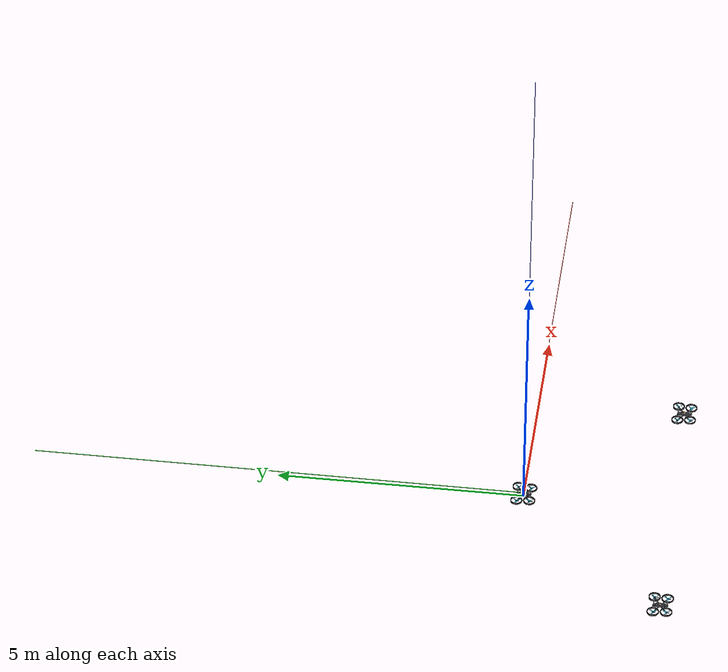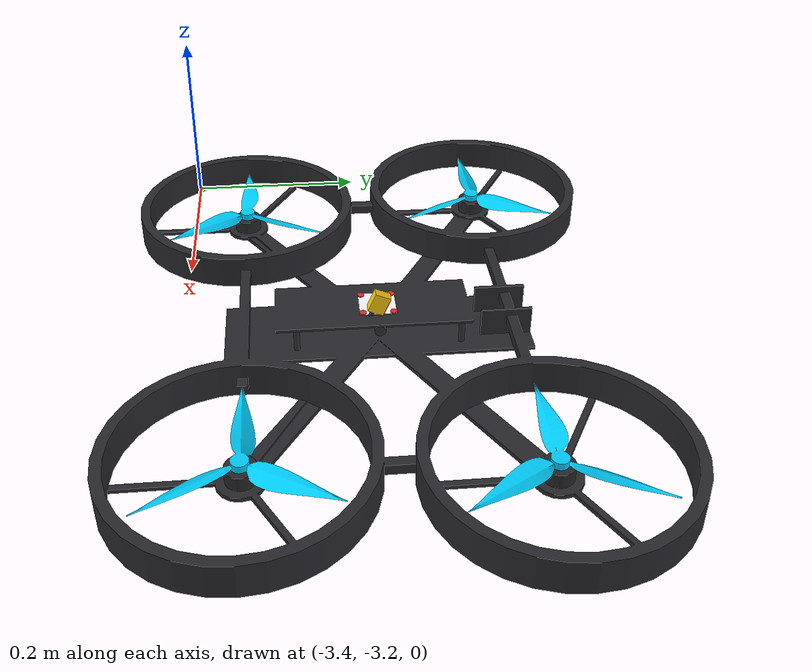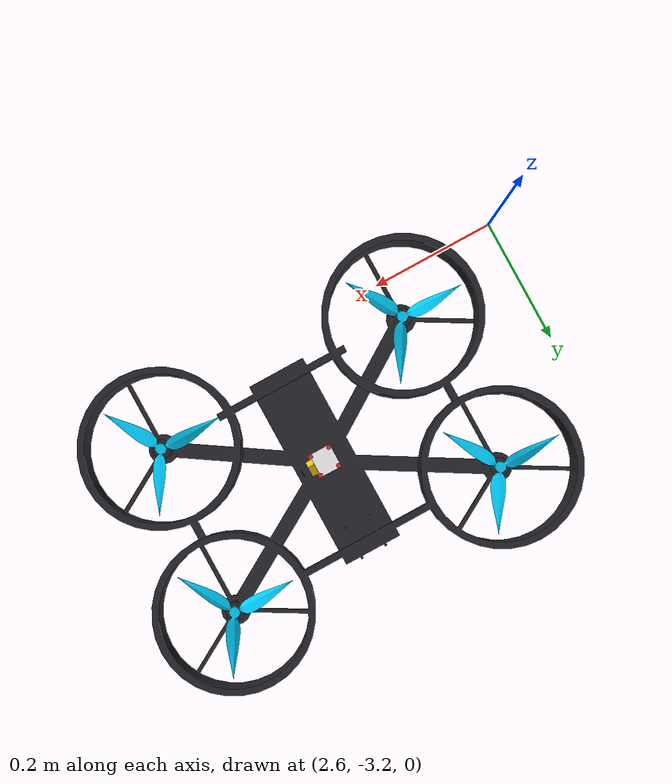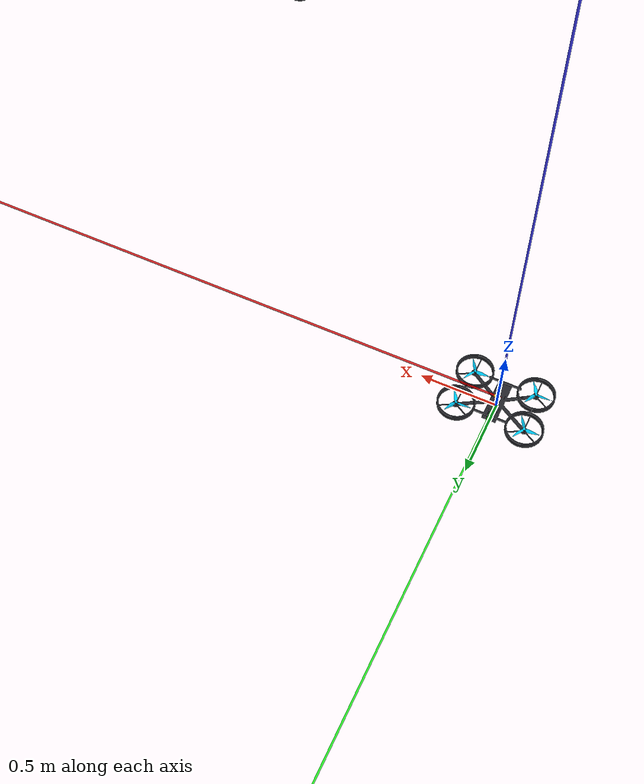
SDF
<sdf version="1.9">
 <world name="cinewhoop_3drones">
  <physics name="1ms" type="ignore">
   <max_step_size>0.001</max_step_size>
   <real_time_factor>1.0</real_time_factor>
  </physics>
  <plugin filename="gz-sim-physics-system" name="gz::sim::systems::Physics"/>
  <plugin filename="gz-sim-sensors-system" name="gz::sim::systems::Sensors">
   <render_engine>ogre2</render_engine>
  </plugin>
  <plugin filename="gz-sim-user-commands-system" name="gz::sim::systems::UserCommands"/>
  <plugin filename="gz-sim-scene-broadcaster-system" name="gz::sim::systems::SceneBroadcaster"/>
  <plugin filename="gz-sim-imu-system" name="gz::sim::systems::Imu"/>
  <plugin filename="gz-sim-navsat-system" name="gz::sim::systems::NavSat"/>
  <scene><ambient>1.0 1.0 1.0</ambient><background>0.8 0.8 0.8</background></scene>
  <spherical_coordinates>
   <latitude_deg>-35.363262</latitude_deg>
   <longitude_deg>149.165237</longitude_deg>
   <elevation>584</elevation>
   <heading_deg>0</heading_deg>
   <surface_model>EARTH_WGS84</surface_model>
  </spherical_coordinates>
  <light type="directional" name="sun">
   <pose>0 0 10 0 0 0</pose>
   <diffuse>0.8 0.8 0.8 1</diffuse>
   <specular>0.8 0.8 0.8 1</specular>
   <attenuation>
    <range>1000</range>
    <constant>0.9</constant>
    <linear>0.01</linear>
    <quadratic>0.001</quadratic>
   </attenuation>
   <direction>-0.5 0.1 -0.9</direction>
  </light>
  <model name="axes">
   <static>1</static>
   <link name="link">
    <visual name="r">
     <cast_shadows>0</cast_shadows>
     <pose>5 0 0.1 0 0 0</pose>
     <geometry><box><size>10 0.01 0.01</size></box></geometry>
     <material>
      <ambient>1 0 0 0.8</ambient>
      <diffuse>1 0 0 0.8</diffuse>
      <emissive>1 0 0 0.8</emissive>
      <specular>0.5 0.5 0.5 0.8</specular>
     </material>
    </visual>
    <visual name="g">
     <cast_shadows>0</cast_shadows>
     <pose>0 5 0.1 0 0 0</pose>
     <geometry><box><size>0.01 10 0.01</size></box></geometry>
     <material>
      <ambient>0 1 0 0.8</ambient>
      <diffuse>0 1 0 0.8</diffuse>
      <emissive>0 1 0 0.8</emissive>
      <specular>0.5 0.5 0.5 0.8</specular>
     </material>
    </visual>
    <visual name="b">
     <cast_shadows>0</cast_shadows>
     <pose>0 0 5.1 0 0 0</pose>
     <geometry><box><size>0.01 0.01 10</size></box></geometry>
     <material>
      <ambient>0 0 1 0.8</ambient>
      <diffuse>0 0 1 0.8</diffuse>
      <emissive>0 0 1 0.8</emissive>
      <specular>0.5 0.5 0.5 0.8</specular>
     </material>
    </visual>
    <sensor name="navsat_sensor" type="navsat"><always_on>1</always_on><update_rate>1</update_rate></sensor>
   </link>
  </model>
  <include>
   <name>cinewhoop_1</name>
   <uri>model://cinewhoop_1</uri>
   <pose degrees="true">0 0 0.05 0 0 90</pose>
  </include>
  <include>
   <name>cinewhoop_2</name>
   <uri>model://cinewhoop_2</uri>
   <pose degrees="true">-3.0 -3.0 0.05 0 0 90</pose>
  </include>
  <include>
   <name>cinewhoop_3</name>
   <uri>model://cinewhoop_3</uri>
   <pose degrees="true">3.0 -3.0 0.05 0 0 90</pose>
  </include>
 </world>
</sdf>

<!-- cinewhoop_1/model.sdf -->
<sdf version="1.9">
  <model name="cinewhoop_1">
    <include>
      <uri>model://iris_with_standoffs</uri>
    </include>

    <!--
      visual markers for debugging
      - blade root    - teal
      - blade tip     - orange
      - blade cp      - yellow
      - blade forward - red
      - blade upward  - blue
    -->

    <!-- plugins -->
    <plugin filename="gz-sim-joint-state-publisher-system"
      name="gz::sim::systems::JointStatePublisher">
    </plugin>
    <plugin filename="gz-sim-lift-drag-system"
        name="gz::sim::systems::LiftDrag">
      <a0>0.3</a0>
      <alpha_stall>1.4</alpha_stall>
      <cla>4.2500</cla>
      <cda>0.10</cda>
      <cma>0.0</cma>
      <cla_stall>-0.025</cla_stall>
      <cda_stall>0.0</cda_stall>
      <cma_stall>0.0</cma_stall>
      <area>0.002</area>
      <air_density>1.2041</air_density>
      <cp>0.084 0 0</cp>
      <forward>0 1 0</forward>
      <upward>0 0 1</upward>
      <link_name>iris_with_standoffs::rotor_0</link_name>
    </plugin>
    <plugin filename="gz-sim-lift-drag-system"
        name="gz::sim::systems::LiftDrag">
      <a0>0.3</a0>
      <alpha_stall>1.4</alpha_stall>
      <cla>4.2500</cla>
      <cda>0.10</cda>
      <cma>0.0</cma>
      <cla_stall>-0.025</cla_stall>
      <cda_stall>0.0</cda_stall>
      <cma_stall>0.0</cma_stall>
      <area>0.002</area>
      <air_density>1.2041</air_density>
      <cp>-0.084 0 0</cp>
      <forward>0 -1 0</forward>
      <upward>0 0 1</upward>
      <link_name>iris_with_standoffs::rotor_0</link_name>
    </plugin>

    <plugin filename="gz-sim-lift-drag-system"
        name="gz::sim::systems::LiftDrag">
      <a0>0.3</a0>
      <alpha_stall>1.4</alpha_stall>
      <cla>4.2500</cla>
      <cda>0.10</cda>
      <cma>0.0</cma>
      <cla_stall>-0.025</cla_stall>
      <cda_stall>0.0</cda_stall>
      <cma_stall>0.0</cma_stall>
      <area>0.002</area>
      <air_density>1.2041</air_density>
      <cp>0.084 0 0</cp>
      <forward>0 1 0</forward>
      <upward>0 0 1</upward>
      <link_name>iris_with_standoffs::rotor_1</link_name>
    </plugin>
    <plugin filename="gz-sim-lift-drag-system"
        name="gz::sim::systems::LiftDrag">
      <a0>0.3</a0>
      <alpha_stall>1.4</alpha_stall>
      <cla>4.2500</cla>
      <cda>0.10</cda>
      <cma>0.0</cma>
      <cla_stall>-0.025</cla_stall>
      <cda_stall>0.0</cda_stall>
      <cma_stall>0.0</cma_stall>
      <area>0.002</area>
      <air_density>1.2041</air_density>
      <cp>-0.084 0 0</cp>
      <forward>0 -1 0</forward>
      <upward>0 0 1</upward>
      <link_name>iris_with_standoffs::rotor_1</link_name>
    </plugin>

    <plugin filename="gz-sim-lift-drag-system"
        name="gz::sim::systems::LiftDrag">
      <a0>0.3</a0>
      <alpha_stall>1.4</alpha_stall>
      <cla>4.2500</cla>
      <cda>0.10</cda>
      <cma>0.0</cma>
      <cla_stall>-0.025</cla_stall>
      <cda_stall>0.0</cda_stall>
      <cma_stall>0.0</cma_stall>
      <area>0.002</area>
      <air_density>1.2041</air_density>
      <cp>0.084 0 0</cp>
      <forward>0 -1 0</forward>
      <upward>0 0 1</upward>
      <link_name>iris_with_standoffs::rotor_2</link_name>
    </plugin>
    <plugin filename="gz-sim-lift-drag-system"
        name="gz::sim::systems::LiftDrag">
      <a0>0.3</a0>
      <alpha_stall>1.4</alpha_stall>
      <cla>4.2500</cla>
      <cda>0.10</cda>
      <cma>0.0</cma>
      <cla_stall>-0.025</cla_stall>
      <cda_stall>0.0</cda_stall>
      <cma_stall>0.0</cma_stall>
      <area>0.002</area>
      <air_density>1.2041</air_density>
      <cp>-0.084 0 0</cp>
      <forward>0 1 0</forward>
      <upward>0 0 1</upward>
      <link_name>iris_with_standoffs::rotor_2</link_name>
    </plugin>

    <plugin filename="gz-sim-lift-drag-system"
        name="gz::sim::systems::LiftDrag">
      <a0>0.3</a0>
      <alpha_stall>1.4</alpha_stall>
      <cla>4.2500</cla>
      <cda>0.10</cda>
      <cma>0.0</cma>
      <cla_stall>-0.025</cla_stall>
      <cda_stall>0.0</cda_stall>
      <cma_stall>0.0</cma_stall>
      <area>0.002</area>
      <air_density>1.2041</air_density>
      <cp>0.084 0 0</cp>
      <forward>0 -1 0</forward>
      <upward>0 0 1</upward>
      <link_name>iris_with_standoffs::rotor_3</link_name>
    </plugin>
    <plugin filename="gz-sim-lift-drag-system"
        name="gz::sim::systems::LiftDrag">
      <a0>0.3</a0>
      <alpha_stall>1.4</alpha_stall>
      <cla>4.2500</cla>
      <cda>0.10</cda>
      <cma>0.0</cma>
      <cla_stall>-0.025</cla_stall>
      <cda_stall>0.0</cda_stall>
      <cma_stall>0.0</cma_stall>
      <area>0.002</area>
      <air_density>1.2041</air_density>
      <cp>-0.084 0 0</cp>
      <forward>0 1 0</forward>
      <upward>0 0 1</upward>
      <link_name>iris_with_standoffs::rotor_3</link_name>
    </plugin>

    <plugin filename="gz-sim-apply-joint-force-system"
      name="gz::sim::systems::ApplyJointForce">
      <joint_name>iris_with_standoffs::rotor_0_joint</joint_name>
    </plugin>
    <plugin filename="gz-sim-apply-joint-force-system"
      name="gz::sim::systems::ApplyJointForce">
      <joint_name>iris_with_standoffs::rotor_1_joint</joint_name>
    </plugin>
    <plugin filename="gz-sim-apply-joint-force-system"
      name="gz::sim::systems::ApplyJointForce">
      <joint_name>iris_with_standoffs::rotor_2_joint</joint_name>
    </plugin>
    <plugin filename="gz-sim-apply-joint-force-system"
      name="gz::sim::systems::ApplyJointForce">
      <joint_name>iris_with_standoffs::rotor_3_joint</joint_name>
    </plugin>

    <plugin name="ArduPilotPlugin"
      filename="ArduPilotPlugin">
      <!-- Port settings -->
      <fdm_addr>127.0.0.1</fdm_addr>
      <fdm_port_in>9002</fdm_port_in>
      <fdm_port_out>9003</fdm_port_out>
      <connectionTimeoutMaxCount>50</connectionTimeoutMaxCount>
      <lock_step>1</lock_step>
      <no_time_sync>1</no_time_sync>
      <have_32_channels>0</have_32_channels>

      <!-- Frame conventions
        Require by ArduPilot: change model and gazebo from XYZ to XY-Z coordinates
      -->
      <modelXYZToAirplaneXForwardZDown degrees="true">0 0 0 180 0 0</modelXYZToAirplaneXForwardZDown>
      <gazeboXYZToNED degrees="true">0 0 0 180 0 90</gazeboXYZToNED>

      <!-- Sensors -->
      <imuName>iris_with_standoffs::imu_link::imu_sensor</imuName>

      <!--
          incoming control command [0, 1]
          so offset it by 0 to get [0, 1]
          and divide max target by 1.
          offset = 0
          multiplier = 838 max rpm / 1 = 838
        -->
      <control channel="0">
        <jointName>iris_with_standoffs::rotor_0_joint</jointName>
        <useForce>1</useForce>
        <multiplier>838</multiplier>
        <offset>0</offset>
        <servo_min>1100</servo_min>
        <servo_max>1900</servo_max>
        <type>VELOCITY</type>
        <p_gain>0.20</p_gain>
        <i_gain>0</i_gain>
        <d_gain>0</d_gain>
        <i_max>0</i_max>
        <i_min>0</i_min>
        <cmd_max>2.5</cmd_max>
        <cmd_min>-2.5</cmd_min>
        <controlVelocitySlowdownSim>1</controlVelocitySlowdownSim>
      </control>

      <control channel="1">
        <jointName>iris_with_standoffs::rotor_1_joint</jointName>
        <useForce>1</useForce>
        <multiplier>838</multiplier>
        <offset>0</offset>
        <servo_min>1100</servo_min>
        <servo_max>1900</servo_max>
        <type>VELOCITY</type>
        <p_gain>0.20</p_gain>
        <i_gain>0</i_gain>
        <d_gain>0</d_gain>
        <i_max>0</i_max>
        <i_min>0</i_min>
        <cmd_max>2.5</cmd_max>
        <cmd_min>-2.5</cmd_min>
        <controlVelocitySlowdownSim>1</controlVelocitySlowdownSim>
      </control>

      <control channel="2">
        <jointName>iris_with_standoffs::rotor_2_joint</jointName>
        <useForce>1</useForce>
        <multiplier>-838</multiplier>
        <offset>0</offset>
        <servo_min>1100</servo_min>
        <servo_max>1900</servo_max>
        <type>VELOCITY</type>
        <p_gain>0.20</p_gain>
        <i_gain>0</i_gain>
        <d_gain>0</d_gain>
        <i_max>0</i_max>
        <i_min>0</i_min>
        <cmd_max>2.5</cmd_max>
        <cmd_min>-2.5</cmd_min>
        <controlVelocitySlowdownSim>1</controlVelocitySlowdownSim>
      </control>

      <control channel="3">
        <jointName>iris_with_standoffs::rotor_3_joint</jointName>
        <useForce>1</useForce>
        <multiplier>-838</multiplier>
        <offset>0</offset>
        <servo_min>1100</servo_min>
        <servo_max>1900</servo_max>
        <type>VELOCITY</type>
        <p_gain>0.20</p_gain>
        <i_gain>0</i_gain>
        <d_gain>0</d_gain>
        <i_max>0</i_max>
        <i_min>0</i_min>
        <cmd_max>2.5</cmd_max>
        <cmd_min>-2.5</cmd_min>
        <controlVelocitySlowdownSim>1</controlVelocitySlowdownSim>
      </control>

    </plugin>

  </model>
</sdf>

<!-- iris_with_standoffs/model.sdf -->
<sdf version='1.9'>
  <model name='iris_with_standoffs'>
    <pose>0 0 0 0 0 0</pose>
    <link name='base_link'>
      <velocity_decay>
        <linear>0.0</linear>
        <angular>0.0</angular>
      </velocity_decay>
      <inertial>
        <pose>0 0 0 0 0 0</pose>
        <mass>1.5</mass>
        <inertia>
          <ixx>0.008</ixx>
          <ixy>0</ixy>
          <ixz>0</ixz>
          <iyy>0.015</iyy>
          <iyz>0</iyz>
          <izz>0.017</izz>
        </inertia>
      </inertial>
      <collision name='base_collision'>
        <pose>0 0 0 0 0 0</pose>
        <geometry>
          <mesh>
            <uri>model://iris_with_standoffs/meshes/iris_collision.stl</uri>
          </mesh>
        </geometry>
        <surface>
          <contact>
            <ode>
              <max_vel>100.0</max_vel>
              <min_depth>0.001</min_depth>
            </ode>
          </contact>
          <friction>
            <ode>
              <mu>100000.0</mu>
              <mu2>100000.0</mu2>
            </ode>
          </friction>
        </surface>
      </collision>
      <collision name='cinewhoop_bottom_collision'>
        <pose>0 0 -0.01 0 0 0</pose>
        <geometry>
          <box>
            <size>0.30 0.30 0.015</size>
          </box>
        </geometry>
        <surface>
          <contact>
            <ode>
              <max_vel>100.0</max_vel>
              <min_depth>0.001</min_depth>
            </ode>
          </contact>
          <friction>
            <ode>
              <mu>100.0</mu>
              <mu2>100.0</mu2>
            </ode>
          </friction>
        </surface>
      </collision>

      <!-- 1. Carbon Fiber Cinewhoop Ducted Frame -->
      <visual name='base_visual'>
        <geometry>
          <mesh>
            <uri>model://iris_with_standoffs/meshes/cinewhoop_frame.dae</uri>
          </mesh>
        </geometry>
        <material>
          <ambient>0.12 0.12 0.14 1.0</ambient>
          <diffuse>0.16 0.16 0.18 1.0</diffuse>
          <specular>0.4 0.4 0.4 1.0</specular>
          <pbr>
            <metal>
              <albedo_map>model://iris_with_standoffs/materials/textures/carbon_fiber_texture.png</albedo_map>
              <metalness>0.2</metalness>
              <roughness>0.5</roughness>
            </metal>
          </pbr>
        </material>
      </visual>

      <!-- 2. Flight Controller Stack: Matek H743-SLIM V3 Top Board -->
      <visual name='matek_h743_fc_visual'>
        <pose>0 0 0.031 0 0 0</pose>
        <geometry>
          <box>
            <size>0.036 0.036 0.003</size>
          </box>
        </geometry>
        <material>
          <diffuse>1.0 1.0 1.0 1.0</diffuse>
          <pbr>
            <metal>
              <albedo_map>model://iris_with_standoffs/materials/textures/matek_pcb_texture.png</albedo_map>
              <roughness>0.25</roughness>
              <metalness>0.20</metalness>
            </metal>
          </pbr>
        </material>
      </visual>

      <!-- 3. Flight Controller Stack: 4-in-1 ESC Bottom Board -->
      <visual name='matek_4in1_esc_visual'>
        <pose>0 0 0.024 0 0 0</pose>
        <geometry>
          <box>
            <size>0.040 0.040 0.003</size>
          </box>
        </geometry>
        <material>
          <ambient>0.08 0.08 0.09 1.0</ambient>
          <diffuse>0.12 0.12 0.13 1.0</diffuse>
          <pbr>
            <metal>
              <roughness>0.7</roughness>
              <metalness>0.1</metalness>
            </metal>
          </pbr>
        </material>
      </visual>

      <!-- 4. Stack Corners: 4 Red Silicone Anti-Vibration Grommets -->
      <visual name='stack_damper_fl'>
        <pose>0.015 0.015 0.0275 0 0 0</pose>
        <geometry>
          <cylinder>
            <radius>0.0035</radius>
            <length>0.012</length>
          </cylinder>
        </geometry>
        <material>
          <ambient>0.80 0.10 0.10 1.0</ambient>
          <diffuse>0.92 0.15 0.15 1.0</diffuse>
          <pbr>
            <metal>
              <roughness>0.6</roughness>
              <metalness>0.05</metalness>
            </metal>
          </pbr>
        </material>
      </visual>
      <visual name='stack_damper_fr'>
        <pose>0.015 -0.015 0.0275 0 0 0</pose>
        <geometry>
          <cylinder>
            <radius>0.0035</radius>
            <length>0.012</length>
          </cylinder>
        </geometry>
        <material>
          <ambient>0.80 0.10 0.10 1.0</ambient>
          <diffuse>0.92 0.15 0.15 1.0</diffuse>
          <pbr>
            <metal>
              <roughness>0.6</roughness>
              <metalness>0.05</metalness>
            </metal>
          </pbr>
        </material>
      </visual>
      <visual name='stack_damper_rl'>
        <pose>-0.015 0.015 0.0275 0 0 0</pose>
        <geometry>
          <cylinder>
            <radius>0.0035</radius>
            <length>0.012</length>
          </cylinder>
        </geometry>
        <material>
          <ambient>0.80 0.10 0.10 1.0</ambient>
          <diffuse>0.92 0.15 0.15 1.0</diffuse>
          <pbr>
            <metal>
              <roughness>0.6</roughness>
              <metalness>0.05</metalness>
            </metal>
          </pbr>
        </material>
      </visual>
      <visual name='stack_damper_rr'>
        <pose>-0.015 -0.015 0.0275 0 0 0</pose>
        <geometry>
          <cylinder>
            <radius>0.0035</radius>
            <length>0.012</length>
          </cylinder>
        </geometry>
        <material>
          <ambient>0.80 0.10 0.10 1.0</ambient>
          <diffuse>0.92 0.15 0.15 1.0</diffuse>
          <pbr>
            <metal>
              <roughness>0.6</roughness>
              <metalness>0.05</metalness>
            </metal>
          </pbr>
        </material>
      </visual>

      <!-- 5. 4 Brushless Motors (Black Anodized Stators & Bells) -->
      <visual name='motor_0_visual'>
        <pose>0.13 -0.22 0.012 0 0 0</pose>
        <geometry>
          <cylinder>
            <radius>0.014</radius>
            <length>0.016</length>
          </cylinder>
        </geometry>
        <material>
          <ambient>0.10 0.10 0.10 1.0</ambient>
          <diffuse>0.15 0.15 0.16 1.0</diffuse>
          <specular>0.6 0.6 0.6 1.0</specular>
          <pbr>
            <metal>
              <roughness>0.35</roughness>
              <metalness>0.85</metalness>
            </metal>
          </pbr>
        </material>
      </visual>
      <visual name='motor_1_visual'>
        <pose>-0.13 0.20 0.012 0 0 0</pose>
        <geometry>
          <cylinder>
            <radius>0.014</radius>
            <length>0.016</length>
          </cylinder>
        </geometry>
        <material>
          <ambient>0.10 0.10 0.10 1.0</ambient>
          <diffuse>0.15 0.15 0.16 1.0</diffuse>
          <specular>0.6 0.6 0.6 1.0</specular>
          <pbr>
            <metal>
              <roughness>0.35</roughness>
              <metalness>0.85</metalness>
            </metal>
          </pbr>
        </material>
      </visual>
      <visual name='motor_2_visual'>
        <pose>0.13 0.22 0.012 0 0 0</pose>
        <geometry>
          <cylinder>
            <radius>0.014</radius>
            <length>0.016</length>
          </cylinder>
        </geometry>
        <material>
          <ambient>0.10 0.10 0.10 1.0</ambient>
          <diffuse>0.15 0.15 0.16 1.0</diffuse>
          <specular>0.6 0.6 0.6 1.0</specular>
          <pbr>
            <metal>
              <roughness>0.35</roughness>
              <metalness>0.85</metalness>
            </metal>
          </pbr>
        </material>
      </visual>
      <visual name='motor_3_visual'>
        <pose>-0.13 -0.20 0.012 0 0 0</pose>
        <geometry>
          <cylinder>
            <radius>0.014</radius>
            <length>0.016</length>
          </cylinder>
        </geometry>
        <material>
          <ambient>0.10 0.10 0.10 1.0</ambient>
          <diffuse>0.15 0.15 0.16 1.0</diffuse>
          <specular>0.6 0.6 0.6 1.0</specular>
          <pbr>
            <metal>
              <roughness>0.35</roughness>
              <metalness>0.85</metalness>
            </metal>
          </pbr>
        </material>
      </visual>

      <!-- 6. Battery Lead Wires & Industrial Yellow XT60 Connector -->
      <visual name='battery_wire_red'>
        <pose>0.005 -0.018 0.038 0 0.40 0</pose>
        <geometry>
          <cylinder>
            <radius>0.0025</radius>
            <length>0.024</length>
          </cylinder>
        </geometry>
        <material>
          <ambient>0.85 0.12 0.12 1.0</ambient>
          <diffuse>0.90 0.15 0.15 1.0</diffuse>
          <pbr>
            <metal>
              <roughness>0.5</roughness>
              <metalness>0.05</metalness>
            </metal>
          </pbr>
        </material>
      </visual>
      <visual name='battery_wire_black'>
        <pose>-0.005 -0.018 0.038 0 0.40 0</pose>
        <geometry>
          <cylinder>
            <radius>0.0025</radius>
            <length>0.024</length>
          </cylinder>
        </geometry>
        <material>
          <ambient>0.08 0.08 0.08 1.0</ambient>
          <diffuse>0.12 0.12 0.12 1.0</diffuse>
          <pbr>
            <metal>
              <roughness>0.5</roughness>
              <metalness>0.05</metalness>
            </metal>
          </pbr>
        </material>
      </visual>
      <visual name='xt60_connector'>
        <pose>0.00 -0.020 0.048 0 0.40 0</pose>
        <geometry>
          <box>
            <size>0.016 0.010 0.020</size>
          </box>
        </geometry>
        <material>
          <ambient>0.92 0.72 0.00 1.0</ambient>
          <diffuse>1.00 0.80 0.05 1.0</diffuse>
          <pbr>
            <metal>
              <roughness>0.3</roughness>
              <metalness>0.1</metalness>
            </metal>
          </pbr>
        </material>
      </visual>

      <!-- 7. Filter Capacitor (Black cylinder with gold band) -->
      <visual name='filter_capacitor'>
        <pose>0.00 -0.028 0.026 1.5708 0 0</pose>
        <geometry>
          <cylinder>
            <radius>0.0055</radius>
            <length>0.018</length>
          </cylinder>
        </geometry>
        <material>
          <ambient>0.10 0.10 0.10 1.0</ambient>
          <diffuse>0.18 0.18 0.18 1.0</diffuse>
          <pbr>
            <metal>
              <roughness>0.3</roughness>
              <metalness>0.7</metalness>
            </metal>
          </pbr>
        </material>
      </visual>

      <!-- 8. Knurled Aluminum Frame Standoffs -->
      <visual name='standoff_fl'>
        <pose>0.08 0.028 0.016 0 0 0</pose>
        <geometry>
          <cylinder>
            <radius>0.003</radius>
            <length>0.026</length>
          </cylinder>
        </geometry>
        <material>
          <ambient>0.12 0.12 0.12 1.0</ambient>
          <diffuse>0.18 0.18 0.20 1.0</diffuse>
          <pbr>
            <metal>
              <roughness>0.3</roughness>
              <metalness>0.8</metalness>
            </metal>
          </pbr>
        </material>
      </visual>
      <visual name='standoff_fr'>
        <pose>0.08 -0.028 0.016 0 0 0</pose>
        <geometry>
          <cylinder>
            <radius>0.003</radius>
            <length>0.026</length>
          </cylinder>
        </geometry>
        <material>
          <ambient>0.12 0.12 0.12 1.0</ambient>
          <diffuse>0.18 0.18 0.20 1.0</diffuse>
          <pbr>
            <metal>
              <roughness>0.3</roughness>
              <metalness>0.8</metalness>
            </metal>
          </pbr>
        </material>
      </visual>
      <visual name='standoff_rl'>
        <pose>-0.08 0.028 0.016 0 0 0</pose>
        <geometry>
          <cylinder>
            <radius>0.003</radius>
            <length>0.026</length>
          </cylinder>
        </geometry>
        <material>
          <ambient>0.12 0.12 0.12 1.0</ambient>
          <diffuse>0.18 0.18 0.20 1.0</diffuse>
          <pbr>
            <metal>
              <roughness>0.3</roughness>
              <metalness>0.8</metalness>
            </metal>
          </pbr>
        </material>
      </visual>
      <visual name='standoff_rr'>
        <pose>-0.08 -0.028 0.016 0 0 0</pose>
        <geometry>
          <cylinder>
            <radius>0.003</radius>
            <length>0.026</length>
          </cylinder>
        </geometry>
        <material>
          <ambient>0.12 0.12 0.12 1.0</ambient>
          <diffuse>0.18 0.18 0.20 1.0</diffuse>
          <pbr>
            <metal>
              <roughness>0.3</roughness>
              <metalness>0.8</metalness>
            </metal>
          </pbr>
        </material>
      </visual>
    </link>

    <link name='imu_link'>
      <inertial>
        <pose>0 0 0 0 0 0</pose>
        <mass>0.15</mass>
        <inertia>
          <ixx>0.00001</ixx>
          <ixy>0</ixy>
          <ixz>0</ixz>
          <iyy>0.00002</iyy>
          <iyz>0</iyz>
          <izz>0.00002</izz>
        </inertia>
      </inertial>
      <sensor name="imu_sensor" type="imu">
        <gz_frame_id>imu_link</gz_frame_id>
        <pose degrees="true">0 0 0 180 0 0</pose>
        <always_on>1</always_on>
        <update_rate>1000.0</update_rate>
      </sensor>
    </link>
    <joint name='imu_joint' type='revolute'>
      <child>imu_link</child>
      <parent>base_link</parent>
      <axis>
        <xyz>0 0 1</xyz>
        <limit>
          <lower>0</lower>
          <upper>0</upper>
          <effort>0</effort>
          <velocity>0</velocity>
        </limit>
        <dynamics>
          <damping>1.0</damping>
        </dynamics>
      </axis>
    </joint>

    <!-- Rotor 0: Front Right, CCW (Gemfan Cyan Tri-Blade) -->
    <link name='rotor_0'>
      <pose>0.13 -0.22 0.023 0 0 0</pose>
      <inertial>
        <pose>0 0 0 0 0 0</pose>
        <mass>0.025</mass>
        <inertia>
          <ixx>9.75e-06</ixx>
          <ixy>0</ixy>
          <ixz>0</ixz>
          <iyy>0.000166704</iyy>
          <iyz>0</iyz>
          <izz>0.000167604</izz>
        </inertia>
      </inertial>
      <collision name='collision'>
        <pose>0 0 0 0 0 0</pose>
        <geometry>
          <cylinder>
            <length>0.005</length>
            <radius>0.1</radius>
          </cylinder>
        </geometry>
      </collision>
      <visual name='visual'>
        <pose>0 0 0 0 0 0</pose>
        <geometry>
          <mesh>
            <scale>1 1 1</scale>
            <uri>model://iris_with_standoffs/meshes/cinewhoop_prop_ccw.dae</uri>
          </mesh>
        </geometry>
        <material>
          <ambient>0.00 0.65 0.95 1.0</ambient>
          <diffuse>0.00 0.82 1.00 1.0</diffuse>
          <specular>0.85 0.85 0.85 1.0</specular>
          <pbr>
            <metal>
              <metalness>0.05</metalness>
              <roughness>0.15</roughness>
            </metal>
          </pbr>
        </material>
      </visual>
    </link>
    <joint name='rotor_0_joint' type='revolute'>
      <child>rotor_0</child>
      <parent>base_link</parent>
      <axis>
        <xyz>0 0 1</xyz>
        <limit>
          <lower>-1e+16</lower>
          <upper>1e+16</upper>
        </limit>
        <dynamics>
          <damping>0.004</damping>
        </dynamics>
      </axis>
    </joint>

    <!-- Rotor 1: Rear Left, CCW (Gemfan Cyan Tri-Blade) -->
    <link name='rotor_1'>
      <pose>-0.13 0.2 0.023 0 0 0</pose>
      <inertial>
        <pose>0 0 0 0 0 0</pose>
        <mass>0.025</mass>
        <inertia>
          <ixx>9.75e-06</ixx>
          <ixy>0</ixy>
          <ixz>0</ixz>
          <iyy>0.000166704</iyy>
          <iyz>0</iyz>
          <izz>0.000167604</izz>
        </inertia>
      </inertial>
      <collision name='collision'>
        <pose>0 0 0 0 0 0</pose>
        <geometry>
          <cylinder>
            <length>0.005</length>
            <radius>0.1</radius>
          </cylinder>
        </geometry>
      </collision>
      <visual name='visual'>
        <pose>0 0 0 0 0 0</pose>
        <geometry>
          <mesh>
            <scale>1 1 1</scale>
            <uri>model://iris_with_standoffs/meshes/cinewhoop_prop_ccw.dae</uri>
          </mesh>
        </geometry>
        <material>
          <ambient>0.00 0.65 0.95 1.0</ambient>
          <diffuse>0.00 0.82 1.00 1.0</diffuse>
          <specular>0.85 0.85 0.85 1.0</specular>
          <pbr>
            <metal>
              <metalness>0.05</metalness>
              <roughness>0.15</roughness>
            </metal>
          </pbr>
        </material>
      </visual>
    </link>
    <joint name='rotor_1_joint' type='revolute'>
      <child>rotor_1</child>
      <parent>base_link</parent>
      <axis>
        <xyz>0 0 1</xyz>
        <limit>
          <lower>-1e+16</lower>
          <upper>1e+16</upper>
        </limit>
        <dynamics>
          <damping>0.004</damping>
        </dynamics>
      </axis>
    </joint>

    <!-- Rotor 2: Front Left, CW (Gemfan Cyan Tri-Blade) -->
    <link name='rotor_2'>
      <pose>0.13 0.22 0.023 0 0 0</pose>
      <inertial>
        <pose>0 0 0 0 0 0</pose>
        <mass>0.025</mass>
        <inertia>
          <ixx>9.75e-06</ixx>
          <ixy>0</ixy>
          <ixz>0</ixz>
          <iyy>0.000166704</iyy>
          <iyz>0</iyz>
          <izz>0.000167604</izz>
        </inertia>
      </inertial>
      <collision name='collision'>
        <pose>0 0 0 0 0 0</pose>
        <geometry>
          <cylinder>
            <length>0.005</length>
            <radius>0.1</radius>
          </cylinder>
        </geometry>
      </collision>
      <visual name='visual'>
        <pose>0 0 0 0 0 0</pose>
        <geometry>
          <mesh>
            <scale>1 1 1</scale>
            <uri>model://iris_with_standoffs/meshes/cinewhoop_prop_cw.dae</uri>
          </mesh>
        </geometry>
        <material>
          <ambient>0.00 0.65 0.95 1.0</ambient>
          <diffuse>0.00 0.82 1.00 1.0</diffuse>
          <specular>0.85 0.85 0.85 1.0</specular>
          <pbr>
            <metal>
              <metalness>0.05</metalness>
              <roughness>0.15</roughness>
            </metal>
          </pbr>
        </material>
      </visual>
    </link>
    <joint name='rotor_2_joint' type='revolute'>
      <child>rotor_2</child>
      <parent>base_link</parent>
      <axis>
        <xyz>0 0 1</xyz>
        <limit>
          <lower>-1e+16</lower>
          <upper>1e+16</upper>
        </limit>
        <dynamics>
          <damping>0.004</damping>
        </dynamics>
      </axis>
    </joint>

    <!-- Rotor 3: Rear Right, CW (Gemfan Cyan Tri-Blade) -->
    <link name='rotor_3'>
      <pose>-0.13 -0.2 0.023 0 0 0</pose>
      <inertial>
        <pose>0 0 0 0 0 0</pose>
        <mass>0.025</mass>
        <inertia>
          <ixx>9.75e-06</ixx>
          <ixy>0</ixy>
          <ixz>0</ixz>
          <iyy>0.000166704</iyy>
          <iyz>0</iyz>
          <izz>0.000167604</izz>
        </inertia>
      </inertial>
      <collision name='collision'>
        <pose>0 0 0 0 0 0</pose>
        <geometry>
          <cylinder>
            <length>0.005</length>
            <radius>0.1</radius>
          </cylinder>
        </geometry>
      </collision>
      <visual name='visual'>
        <pose>0 0 0 0 0 0</pose>
        <geometry>
          <mesh>
            <scale>1 1 1</scale>
            <uri>model://iris_with_standoffs/meshes/cinewhoop_prop_cw.dae</uri>
          </mesh>
        </geometry>
        <material>
          <ambient>0.00 0.65 0.95 1.0</ambient>
          <diffuse>0.00 0.82 1.00 1.0</diffuse>
          <specular>0.85 0.85 0.85 1.0</specular>
          <pbr>
            <metal>
              <metalness>0.05</metalness>
              <roughness>0.15</roughness>
            </metal>
          </pbr>
        </material>
      </visual>
    </link>
    <joint name='rotor_3_joint' type='revolute'>
      <child>rotor_3</child>
      <parent>base_link</parent>
      <axis>
        <xyz>0 0 1</xyz>
        <limit>
          <lower>-1e+16</lower>
          <upper>1e+16</upper>
        </limit>
        <dynamics>
          <damping>0.004</damping>
        </dynamics>
      </axis>
    </joint>
  </model>
</sdf>

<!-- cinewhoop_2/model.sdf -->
<sdf version="1.9">
  <model name="cinewhoop_2">
    <include>
      <uri>model://iris_with_standoffs</uri>
    </include>

    <!--
      visual markers for debugging
      - blade root    - teal
      - blade tip     - orange
      - blade cp      - yellow
      - blade forward - red
      - blade upward  - blue
    -->

    <!-- plugins -->
    <plugin filename="gz-sim-joint-state-publisher-system"
      name="gz::sim::systems::JointStatePublisher">
    </plugin>
    <plugin filename="gz-sim-lift-drag-system"
        name="gz::sim::systems::LiftDrag">
      <a0>0.3</a0>
      <alpha_stall>1.4</alpha_stall>
      <cla>4.2500</cla>
      <cda>0.10</cda>
      <cma>0.0</cma>
      <cla_stall>-0.025</cla_stall>
      <cda_stall>0.0</cda_stall>
      <cma_stall>0.0</cma_stall>
      <area>0.002</area>
      <air_density>1.2041</air_density>
      <cp>0.084 0 0</cp>
      <forward>0 1 0</forward>
      <upward>0 0 1</upward>
      <link_name>iris_with_standoffs::rotor_0</link_name>
    </plugin>
    <plugin filename="gz-sim-lift-drag-system"
        name="gz::sim::systems::LiftDrag">
      <a0>0.3</a0>
      <alpha_stall>1.4</alpha_stall>
      <cla>4.2500</cla>
      <cda>0.10</cda>
      <cma>0.0</cma>
      <cla_stall>-0.025</cla_stall>
      <cda_stall>0.0</cda_stall>
      <cma_stall>0.0</cma_stall>
      <area>0.002</area>
      <air_density>1.2041</air_density>
      <cp>-0.084 0 0</cp>
      <forward>0 -1 0</forward>
      <upward>0 0 1</upward>
      <link_name>iris_with_standoffs::rotor_0</link_name>
    </plugin>

    <plugin filename="gz-sim-lift-drag-system"
        name="gz::sim::systems::LiftDrag">
      <a0>0.3</a0>
      <alpha_stall>1.4</alpha_stall>
      <cla>4.2500</cla>
      <cda>0.10</cda>
      <cma>0.0</cma>
      <cla_stall>-0.025</cla_stall>
      <cda_stall>0.0</cda_stall>
      <cma_stall>0.0</cma_stall>
      <area>0.002</area>
      <air_density>1.2041</air_density>
      <cp>0.084 0 0</cp>
      <forward>0 1 0</forward>
      <upward>0 0 1</upward>
      <link_name>iris_with_standoffs::rotor_1</link_name>
    </plugin>
    <plugin filename="gz-sim-lift-drag-system"
        name="gz::sim::systems::LiftDrag">
      <a0>0.3</a0>
      <alpha_stall>1.4</alpha_stall>
      <cla>4.2500</cla>
      <cda>0.10</cda>
      <cma>0.0</cma>
      <cla_stall>-0.025</cla_stall>
      <cda_stall>0.0</cda_stall>
      <cma_stall>0.0</cma_stall>
      <area>0.002</area>
      <air_density>1.2041</air_density>
      <cp>-0.084 0 0</cp>
      <forward>0 -1 0</forward>
      <upward>0 0 1</upward>
      <link_name>iris_with_standoffs::rotor_1</link_name>
    </plugin>

    <plugin filename="gz-sim-lift-drag-system"
        name="gz::sim::systems::LiftDrag">
      <a0>0.3</a0>
      <alpha_stall>1.4</alpha_stall>
      <cla>4.2500</cla>
      <cda>0.10</cda>
      <cma>0.0</cma>
      <cla_stall>-0.025</cla_stall>
      <cda_stall>0.0</cda_stall>
      <cma_stall>0.0</cma_stall>
      <area>0.002</area>
      <air_density>1.2041</air_density>
      <cp>0.084 0 0</cp>
      <forward>0 -1 0</forward>
      <upward>0 0 1</upward>
      <link_name>iris_with_standoffs::rotor_2</link_name>
    </plugin>
    <plugin filename="gz-sim-lift-drag-system"
        name="gz::sim::systems::LiftDrag">
      <a0>0.3</a0>
      <alpha_stall>1.4</alpha_stall>
      <cla>4.2500</cla>
      <cda>0.10</cda>
      <cma>0.0</cma>
      <cla_stall>-0.025</cla_stall>
      <cda_stall>0.0</cda_stall>
      <cma_stall>0.0</cma_stall>
      <area>0.002</area>
      <air_density>1.2041</air_density>
      <cp>-0.084 0 0</cp>
      <forward>0 1 0</forward>
      <upward>0 0 1</upward>
      <link_name>iris_with_standoffs::rotor_2</link_name>
    </plugin>

    <plugin filename="gz-sim-lift-drag-system"
        name="gz::sim::systems::LiftDrag">
      <a0>0.3</a0>
      <alpha_stall>1.4</alpha_stall>
      <cla>4.2500</cla>
      <cda>0.10</cda>
      <cma>0.0</cma>
      <cla_stall>-0.025</cla_stall>
      <cda_stall>0.0</cda_stall>
      <cma_stall>0.0</cma_stall>
      <area>0.002</area>
      <air_density>1.2041</air_density>
      <cp>0.084 0 0</cp>
      <forward>0 -1 0</forward>
      <upward>0 0 1</upward>
      <link_name>iris_with_standoffs::rotor_3</link_name>
    </plugin>
    <plugin filename="gz-sim-lift-drag-system"
        name="gz::sim::systems::LiftDrag">
      <a0>0.3</a0>
      <alpha_stall>1.4</alpha_stall>
      <cla>4.2500</cla>
      <cda>0.10</cda>
      <cma>0.0</cma>
      <cla_stall>-0.025</cla_stall>
      <cda_stall>0.0</cda_stall>
      <cma_stall>0.0</cma_stall>
      <area>0.002</area>
      <air_density>1.2041</air_density>
      <cp>-0.084 0 0</cp>
      <forward>0 1 0</forward>
      <upward>0 0 1</upward>
      <link_name>iris_with_standoffs::rotor_3</link_name>
    </plugin>

    <plugin filename="gz-sim-apply-joint-force-system"
      name="gz::sim::systems::ApplyJointForce">
      <joint_name>iris_with_standoffs::rotor_0_joint</joint_name>
    </plugin>
    <plugin filename="gz-sim-apply-joint-force-system"
      name="gz::sim::systems::ApplyJointForce">
      <joint_name>iris_with_standoffs::rotor_1_joint</joint_name>
    </plugin>
    <plugin filename="gz-sim-apply-joint-force-system"
      name="gz::sim::systems::ApplyJointForce">
      <joint_name>iris_with_standoffs::rotor_2_joint</joint_name>
    </plugin>
    <plugin filename="gz-sim-apply-joint-force-system"
      name="gz::sim::systems::ApplyJointForce">
      <joint_name>iris_with_standoffs::rotor_3_joint</joint_name>
    </plugin>

    <plugin name="ArduPilotPlugin"
      filename="ArduPilotPlugin">
      <!-- Port settings -->
      <fdm_addr>127.0.0.1</fdm_addr>
      <fdm_port_in>9012</fdm_port_in>
      <fdm_port_out>9013</fdm_port_out>
      <connectionTimeoutMaxCount>50</connectionTimeoutMaxCount>
      <lock_step>1</lock_step>
      <no_time_sync>1</no_time_sync>
      <have_32_channels>0</have_32_channels>

      <!-- Frame conventions
        Require by ArduPilot: change model and gazebo from XYZ to XY-Z coordinates
      -->
      <modelXYZToAirplaneXForwardZDown degrees="true">0 0 0 180 0 0</modelXYZToAirplaneXForwardZDown>
      <gazeboXYZToNED degrees="true">0 0 0 180 0 90</gazeboXYZToNED>

      <!-- Sensors -->
      <imuName>iris_with_standoffs::imu_link::imu_sensor</imuName>

      <!--
          incoming control command [0, 1]
          so offset it by 0 to get [0, 1]
          and divide max target by 1.
          offset = 0
          multiplier = 838 max rpm / 1 = 838
        -->
      <control channel="0">
        <jointName>iris_with_standoffs::rotor_0_joint</jointName>
        <useForce>1</useForce>
        <multiplier>838</multiplier>
        <offset>0</offset>
        <servo_min>1100</servo_min>
        <servo_max>1900</servo_max>
        <type>VELOCITY</type>
        <p_gain>0.20</p_gain>
        <i_gain>0</i_gain>
        <d_gain>0</d_gain>
        <i_max>0</i_max>
        <i_min>0</i_min>
        <cmd_max>2.5</cmd_max>
        <cmd_min>-2.5</cmd_min>
        <controlVelocitySlowdownSim>1</controlVelocitySlowdownSim>
      </control>

      <control channel="1">
        <jointName>iris_with_standoffs::rotor_1_joint</jointName>
        <useForce>1</useForce>
        <multiplier>838</multiplier>
        <offset>0</offset>
        <servo_min>1100</servo_min>
        <servo_max>1900</servo_max>
        <type>VELOCITY</type>
        <p_gain>0.20</p_gain>
        <i_gain>0</i_gain>
        <d_gain>0</d_gain>
        <i_max>0</i_max>
        <i_min>0</i_min>
        <cmd_max>2.5</cmd_max>
        <cmd_min>-2.5</cmd_min>
        <controlVelocitySlowdownSim>1</controlVelocitySlowdownSim>
      </control>

      <control channel="2">
        <jointName>iris_with_standoffs::rotor_2_joint</jointName>
        <useForce>1</useForce>
        <multiplier>-838</multiplier>
        <offset>0</offset>
        <servo_min>1100</servo_min>
        <servo_max>1900</servo_max>
        <type>VELOCITY</type>
        <p_gain>0.20</p_gain>
        <i_gain>0</i_gain>
        <d_gain>0</d_gain>
        <i_max>0</i_max>
        <i_min>0</i_min>
        <cmd_max>2.5</cmd_max>
        <cmd_min>-2.5</cmd_min>
        <controlVelocitySlowdownSim>1</controlVelocitySlowdownSim>
      </control>

      <control channel="3">
        <jointName>iris_with_standoffs::rotor_3_joint</jointName>
        <useForce>1</useForce>
        <multiplier>-838</multiplier>
        <offset>0</offset>
        <servo_min>1100</servo_min>
        <servo_max>1900</servo_max>
        <type>VELOCITY</type>
        <p_gain>0.20</p_gain>
        <i_gain>0</i_gain>
        <d_gain>0</d_gain>
        <i_max>0</i_max>
        <i_min>0</i_min>
        <cmd_max>2.5</cmd_max>
        <cmd_min>-2.5</cmd_min>
        <controlVelocitySlowdownSim>1</controlVelocitySlowdownSim>
      </control>

    </plugin>

  </model>
</sdf>

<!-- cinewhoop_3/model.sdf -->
<sdf version="1.9">
  <model name="cinewhoop_3">
    <include>
      <uri>model://iris_with_standoffs</uri>
    </include>

    <!--
      visual markers for debugging
      - blade root    - teal
      - blade tip     - orange
      - blade cp      - yellow
      - blade forward - red
      - blade upward  - blue
    -->

    <!-- plugins -->
    <plugin filename="gz-sim-joint-state-publisher-system"
      name="gz::sim::systems::JointStatePublisher">
    </plugin>
    <plugin filename="gz-sim-lift-drag-system"
        name="gz::sim::systems::LiftDrag">
      <a0>0.3</a0>
      <alpha_stall>1.4</alpha_stall>
      <cla>4.2500</cla>
      <cda>0.10</cda>
      <cma>0.0</cma>
      <cla_stall>-0.025</cla_stall>
      <cda_stall>0.0</cda_stall>
      <cma_stall>0.0</cma_stall>
      <area>0.002</area>
      <air_density>1.2041</air_density>
      <cp>0.084 0 0</cp>
      <forward>0 1 0</forward>
      <upward>0 0 1</upward>
      <link_name>iris_with_standoffs::rotor_0</link_name>
    </plugin>
    <plugin filename="gz-sim-lift-drag-system"
        name="gz::sim::systems::LiftDrag">
      <a0>0.3</a0>
      <alpha_stall>1.4</alpha_stall>
      <cla>4.2500</cla>
      <cda>0.10</cda>
      <cma>0.0</cma>
      <cla_stall>-0.025</cla_stall>
      <cda_stall>0.0</cda_stall>
      <cma_stall>0.0</cma_stall>
      <area>0.002</area>
      <air_density>1.2041</air_density>
      <cp>-0.084 0 0</cp>
      <forward>0 -1 0</forward>
      <upward>0 0 1</upward>
      <link_name>iris_with_standoffs::rotor_0</link_name>
    </plugin>

    <plugin filename="gz-sim-lift-drag-system"
        name="gz::sim::systems::LiftDrag">
      <a0>0.3</a0>
      <alpha_stall>1.4</alpha_stall>
      <cla>4.2500</cla>
      <cda>0.10</cda>
      <cma>0.0</cma>
      <cla_stall>-0.025</cla_stall>
      <cda_stall>0.0</cda_stall>
      <cma_stall>0.0</cma_stall>
      <area>0.002</area>
      <air_density>1.2041</air_density>
      <cp>0.084 0 0</cp>
      <forward>0 1 0</forward>
      <upward>0 0 1</upward>
      <link_name>iris_with_standoffs::rotor_1</link_name>
    </plugin>
    <plugin filename="gz-sim-lift-drag-system"
        name="gz::sim::systems::LiftDrag">
      <a0>0.3</a0>
      <alpha_stall>1.4</alpha_stall>
      <cla>4.2500</cla>
      <cda>0.10</cda>
      <cma>0.0</cma>
      <cla_stall>-0.025</cla_stall>
      <cda_stall>0.0</cda_stall>
      <cma_stall>0.0</cma_stall>
      <area>0.002</area>
      <air_density>1.2041</air_density>
      <cp>-0.084 0 0</cp>
      <forward>0 -1 0</forward>
      <upward>0 0 1</upward>
      <link_name>iris_with_standoffs::rotor_1</link_name>
    </plugin>

    <plugin filename="gz-sim-lift-drag-system"
        name="gz::sim::systems::LiftDrag">
      <a0>0.3</a0>
      <alpha_stall>1.4</alpha_stall>
      <cla>4.2500</cla>
      <cda>0.10</cda>
      <cma>0.0</cma>
      <cla_stall>-0.025</cla_stall>
      <cda_stall>0.0</cda_stall>
      <cma_stall>0.0</cma_stall>
      <area>0.002</area>
      <air_density>1.2041</air_density>
      <cp>0.084 0 0</cp>
      <forward>0 -1 0</forward>
      <upward>0 0 1</upward>
      <link_name>iris_with_standoffs::rotor_2</link_name>
    </plugin>
    <plugin filename="gz-sim-lift-drag-system"
        name="gz::sim::systems::LiftDrag">
      <a0>0.3</a0>
      <alpha_stall>1.4</alpha_stall>
      <cla>4.2500</cla>
      <cda>0.10</cda>
      <cma>0.0</cma>
      <cla_stall>-0.025</cla_stall>
      <cda_stall>0.0</cda_stall>
      <cma_stall>0.0</cma_stall>
      <area>0.002</area>
      <air_density>1.2041</air_density>
      <cp>-0.084 0 0</cp>
      <forward>0 1 0</forward>
      <upward>0 0 1</upward>
      <link_name>iris_with_standoffs::rotor_2</link_name>
    </plugin>

    <plugin filename="gz-sim-lift-drag-system"
        name="gz::sim::systems::LiftDrag">
      <a0>0.3</a0>
      <alpha_stall>1.4</alpha_stall>
      <cla>4.2500</cla>
      <cda>0.10</cda>
      <cma>0.0</cma>
      <cla_stall>-0.025</cla_stall>
      <cda_stall>0.0</cda_stall>
      <cma_stall>0.0</cma_stall>
      <area>0.002</area>
      <air_density>1.2041</air_density>
      <cp>0.084 0 0</cp>
      <forward>0 -1 0</forward>
      <upward>0 0 1</upward>
      <link_name>iris_with_standoffs::rotor_3</link_name>
    </plugin>
    <plugin filename="gz-sim-lift-drag-system"
        name="gz::sim::systems::LiftDrag">
      <a0>0.3</a0>
      <alpha_stall>1.4</alpha_stall>
      <cla>4.2500</cla>
      <cda>0.10</cda>
      <cma>0.0</cma>
      <cla_stall>-0.025</cla_stall>
      <cda_stall>0.0</cda_stall>
      <cma_stall>0.0</cma_stall>
      <area>0.002</area>
      <air_density>1.2041</air_density>
      <cp>-0.084 0 0</cp>
      <forward>0 1 0</forward>
      <upward>0 0 1</upward>
      <link_name>iris_with_standoffs::rotor_3</link_name>
    </plugin>

    <plugin filename="gz-sim-apply-joint-force-system"
      name="gz::sim::systems::ApplyJointForce">
      <joint_name>iris_with_standoffs::rotor_0_joint</joint_name>
    </plugin>
    <plugin filename="gz-sim-apply-joint-force-system"
      name="gz::sim::systems::ApplyJointForce">
      <joint_name>iris_with_standoffs::rotor_1_joint</joint_name>
    </plugin>
    <plugin filename="gz-sim-apply-joint-force-system"
      name="gz::sim::systems::ApplyJointForce">
      <joint_name>iris_with_standoffs::rotor_2_joint</joint_name>
    </plugin>
    <plugin filename="gz-sim-apply-joint-force-system"
      name="gz::sim::systems::ApplyJointForce">
      <joint_name>iris_with_standoffs::rotor_3_joint</joint_name>
    </plugin>

    <plugin name="ArduPilotPlugin"
      filename="ArduPilotPlugin">
      <!-- Port settings -->
      <fdm_addr>127.0.0.1</fdm_addr>
      <fdm_port_in>9022</fdm_port_in>
      <fdm_port_out>9023</fdm_port_out>
      <connectionTimeoutMaxCount>50</connectionTimeoutMaxCount>
      <lock_step>1</lock_step>
      <no_time_sync>1</no_time_sync>
      <have_32_channels>0</have_32_channels>

      <!-- Frame conventions
        Require by ArduPilot: change model and gazebo from XYZ to XY-Z coordinates
      -->
      <modelXYZToAirplaneXForwardZDown degrees="true">0 0 0 180 0 0</modelXYZToAirplaneXForwardZDown>
      <gazeboXYZToNED degrees="true">0 0 0 180 0 90</gazeboXYZToNED>

      <!-- Sensors -->
      <imuName>iris_with_standoffs::imu_link::imu_sensor</imuName>

      <!--
          incoming control command [0, 1]
          so offset it by 0 to get [0, 1]
          and divide max target by 1.
          offset = 0
          multiplier = 838 max rpm / 1 = 838
        -->
      <control channel="0">
        <jointName>iris_with_standoffs::rotor_0_joint</jointName>
        <useForce>1</useForce>
        <multiplier>838</multiplier>
        <offset>0</offset>
        <servo_min>1100</servo_min>
        <servo_max>1900</servo_max>
        <type>VELOCITY</type>
        <p_gain>0.20</p_gain>
        <i_gain>0</i_gain>
        <d_gain>0</d_gain>
        <i_max>0</i_max>
        <i_min>0</i_min>
        <cmd_max>2.5</cmd_max>
        <cmd_min>-2.5</cmd_min>
        <controlVelocitySlowdownSim>1</controlVelocitySlowdownSim>
      </control>

      <control channel="1">
        <jointName>iris_with_standoffs::rotor_1_joint</jointName>
        <useForce>1</useForce>
        <multiplier>838</multiplier>
        <offset>0</offset>
        <servo_min>1100</servo_min>
        <servo_max>1900</servo_max>
        <type>VELOCITY</type>
        <p_gain>0.20</p_gain>
        <i_gain>0</i_gain>
        <d_gain>0</d_gain>
        <i_max>0</i_max>
        <i_min>0</i_min>
        <cmd_max>2.5</cmd_max>
        <cmd_min>-2.5</cmd_min>
        <controlVelocitySlowdownSim>1</controlVelocitySlowdownSim>
      </control>

      <control channel="2">
        <jointName>iris_with_standoffs::rotor_2_joint</jointName>
        <useForce>1</useForce>
        <multiplier>-838</multiplier>
        <offset>0</offset>
        <servo_min>1100</servo_min>
        <servo_max>1900</servo_max>
        <type>VELOCITY</type>
        <p_gain>0.20</p_gain>
        <i_gain>0</i_gain>
        <d_gain>0</d_gain>
        <i_max>0</i_max>
        <i_min>0</i_min>
        <cmd_max>2.5</cmd_max>
        <cmd_min>-2.5</cmd_min>
        <controlVelocitySlowdownSim>1</controlVelocitySlowdownSim>
      </control>

      <control channel="3">
        <jointName>iris_with_standoffs::rotor_3_joint</jointName>
        <useForce>1</useForce>
        <multiplier>-838</multiplier>
        <offset>0</offset>
        <servo_min>1100</servo_min>
        <servo_max>1900</servo_max>
        <type>VELOCITY</type>
        <p_gain>0.20</p_gain>
        <i_gain>0</i_gain>
        <d_gain>0</d_gain>
        <i_max>0</i_max>
        <i_min>0</i_min>
        <cmd_max>2.5</cmd_max>
        <cmd_min>-2.5</cmd_min>
        <controlVelocitySlowdownSim>1</controlVelocitySlowdownSim>
      </control>

    </plugin>

  </model>
</sdf>
